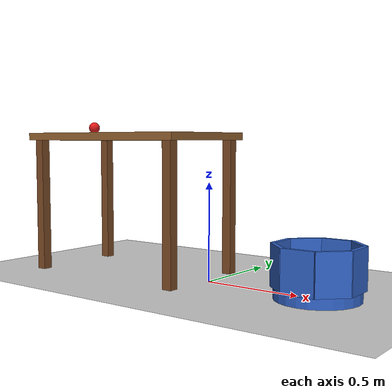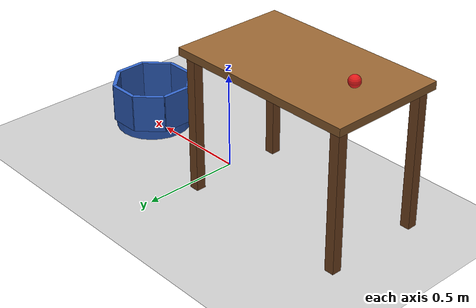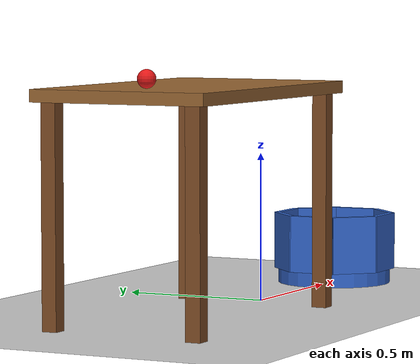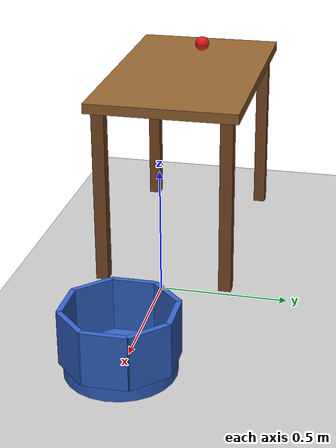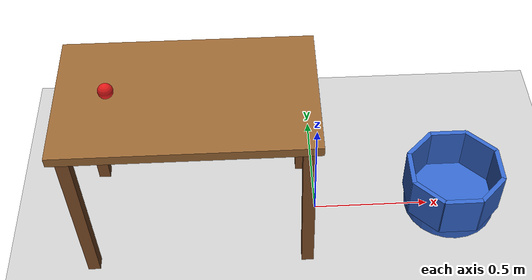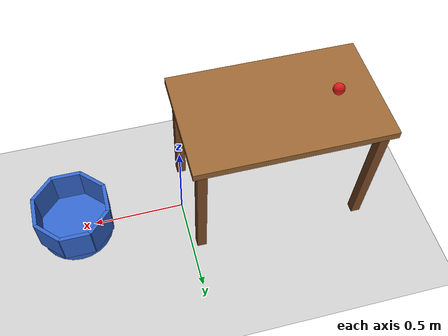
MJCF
<mujoco model="ball_off_table_into_bucket">
  <option timestep="0.002"/>
  <worldbody>
    <light name="sun" pos="0 0 3" dir="0 0 -1" directional="true"/>
    <geom name="floor" type="plane" size="5 5 0.1" rgba="0.8 0.8 0.8 1"/>

    <body name="table" pos="0 0 0">
      <geom name="table_top" type="box" pos="-0.5 0 0.73" size="0.5 0.3 0.02" rgba="0.6 0.4 0.2 1"/>
      <geom name="table_leg1" type="box" pos="-0.95 0.25 0.355" size="0.025 0.025 0.355" rgba="0.5 0.3 0.15 1"/>
      <geom name="table_leg2" type="box" pos="-0.95 -0.25 0.355" size="0.025 0.025 0.355" rgba="0.5 0.3 0.15 1"/>
      <geom name="table_leg3" type="box" pos="-0.05 0.25 0.355" size="0.025 0.025 0.355" rgba="0.5 0.3 0.15 1"/>
      <geom name="table_leg4" type="box" pos="-0.05 -0.25 0.355" size="0.025 0.025 0.355" rgba="0.5 0.3 0.15 1"/>
    </body>

    <body name="bucket" pos="0.6 0 0">
      <geom name="bucket_bottom" type="cylinder" pos="0 0 0.025" size="0.2 0.025" condim="6" friction="1 0.02 0.02" solref="0.005 1" rgba="0.2 0.4 0.8 1"/>
      <geom name="bucket_wall0" type="box" pos="0.19 0 0.15" euler="0 0 0" size="0.01 0.08 0.1" rgba="0.2 0.4 0.8 1"/>
      <geom name="bucket_wall1" type="box" pos="0.1344 0.1344 0.15" euler="0 0 45" size="0.01 0.08 0.1" rgba="0.2 0.4 0.8 1"/>
      <geom name="bucket_wall2" type="box" pos="0 0.19 0.15" euler="0 0 90" size="0.01 0.08 0.1" rgba="0.2 0.4 0.8 1"/>
      <geom name="bucket_wall3" type="box" pos="-0.1344 0.1344 0.15" euler="0 0 135" size="0.01 0.08 0.1" rgba="0.2 0.4 0.8 1"/>
      <geom name="bucket_wall4" type="box" pos="-0.19 0 0.15" euler="0 0 180" size="0.01 0.08 0.1" rgba="0.2 0.4 0.8 1"/>
      <geom name="bucket_wall5" type="box" pos="-0.1344 -0.1344 0.15" euler="0 0 225" size="0.01 0.08 0.1" rgba="0.2 0.4 0.8 1"/>
      <geom name="bucket_wall6" type="box" pos="0 -0.19 0.15" euler="0 0 270" size="0.01 0.08 0.1" rgba="0.2 0.4 0.8 1"/>
      <geom name="bucket_wall7" type="box" pos="0.1344 -0.1344 0.15" euler="0 0 315" size="0.01 0.08 0.1" rgba="0.2 0.4 0.8 1"/>
    </body>

    <body name="ball" pos="-0.8 0 0.78">
      <freejoint name="ball_free"/>
      <geom name="ball" type="sphere" size="0.03" rgba="0.9 0.1 0.1 1"/>
    </body>
  </worldbody>

  <keyframe>
    <key name="start" qpos="-0.8 0 0.78 1 0 0 0" qvel="1.588 0 0 0 52.93 0"/>
  </keyframe>
</mujoco>
